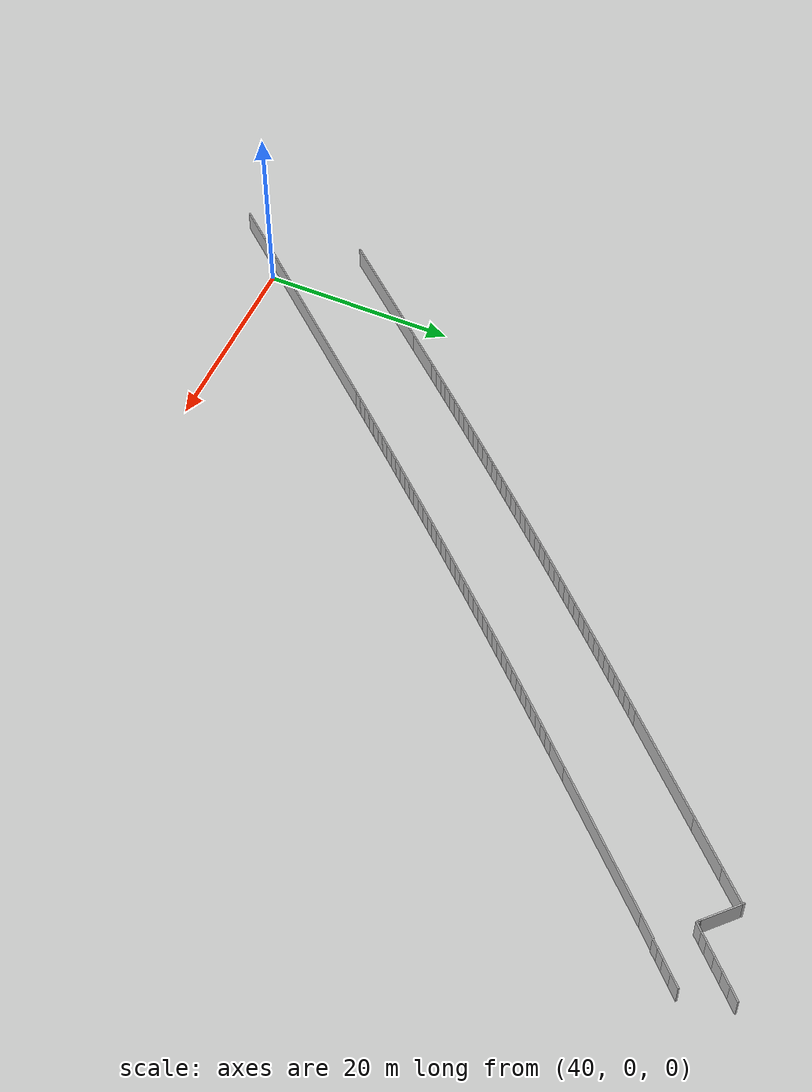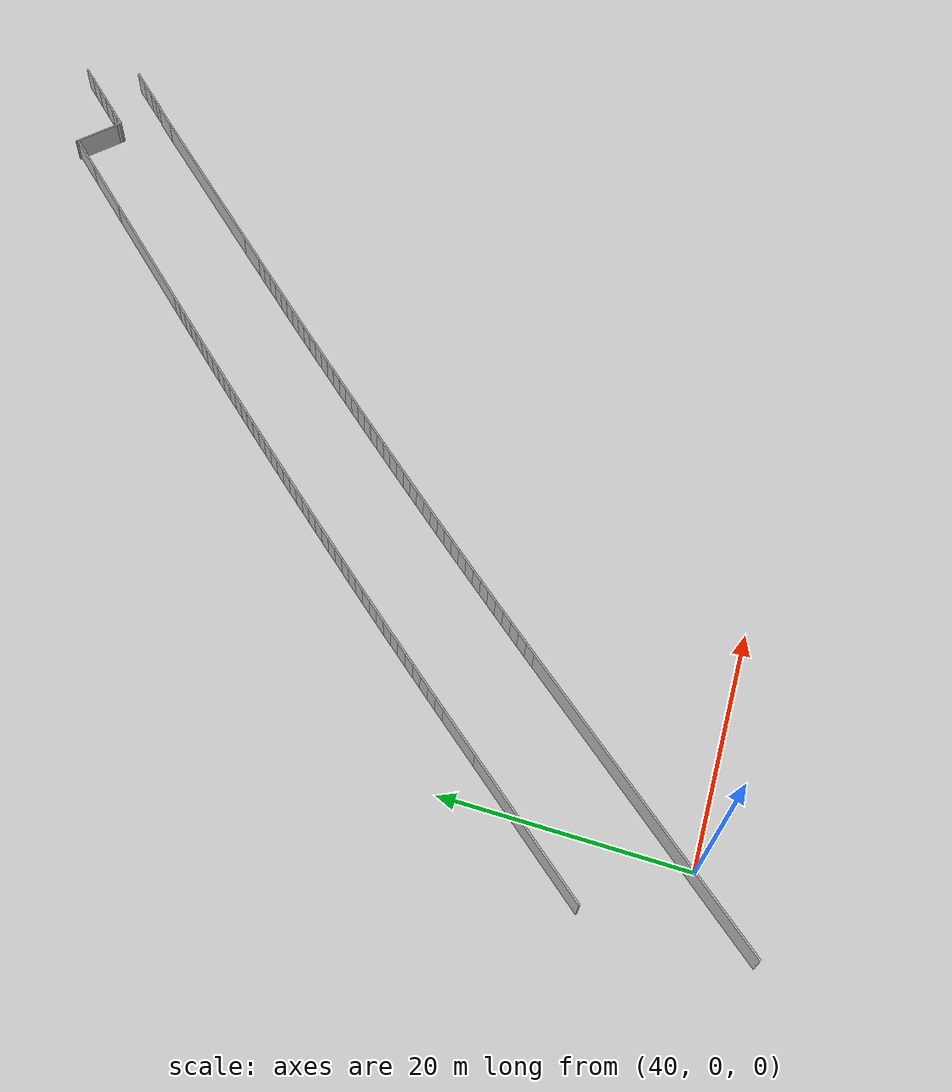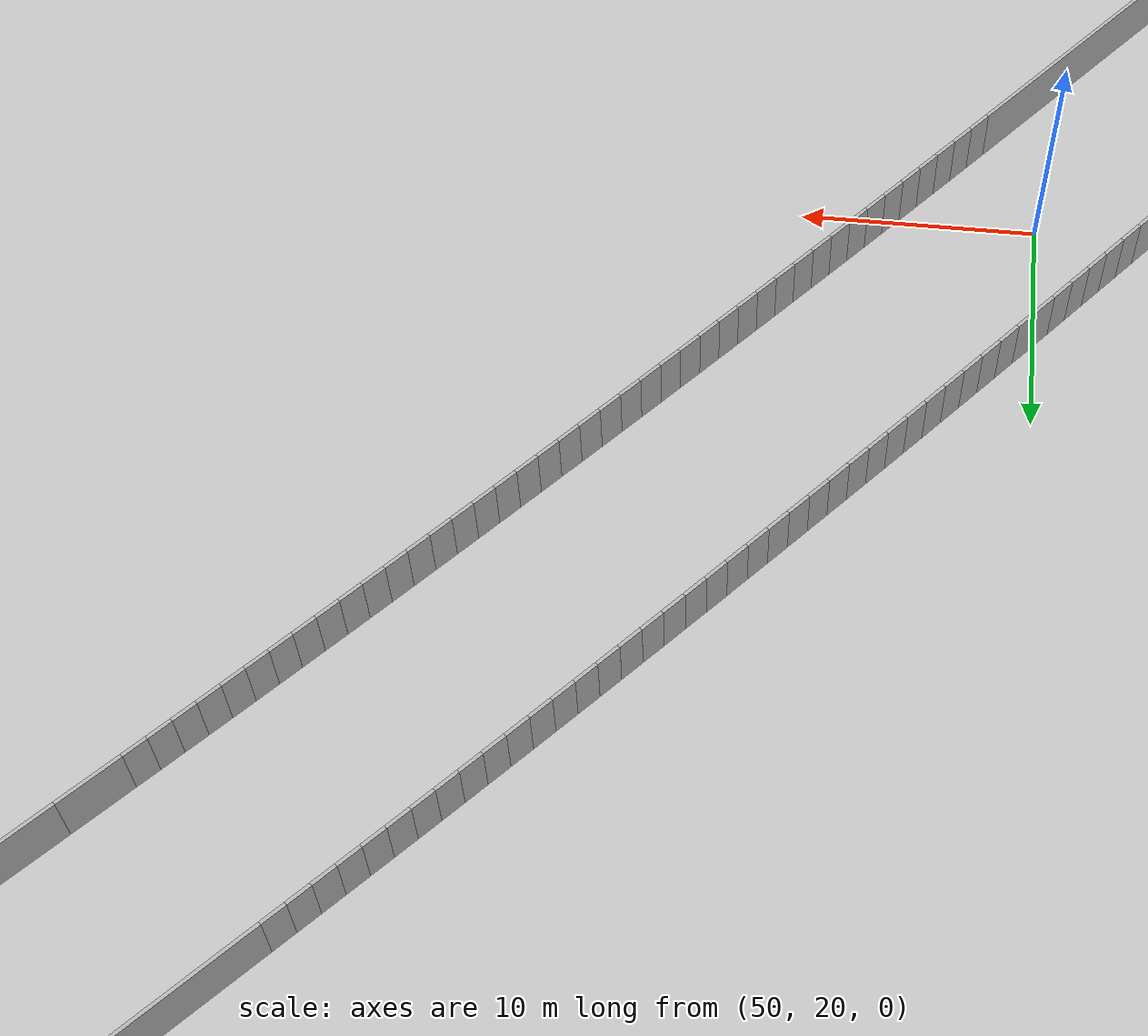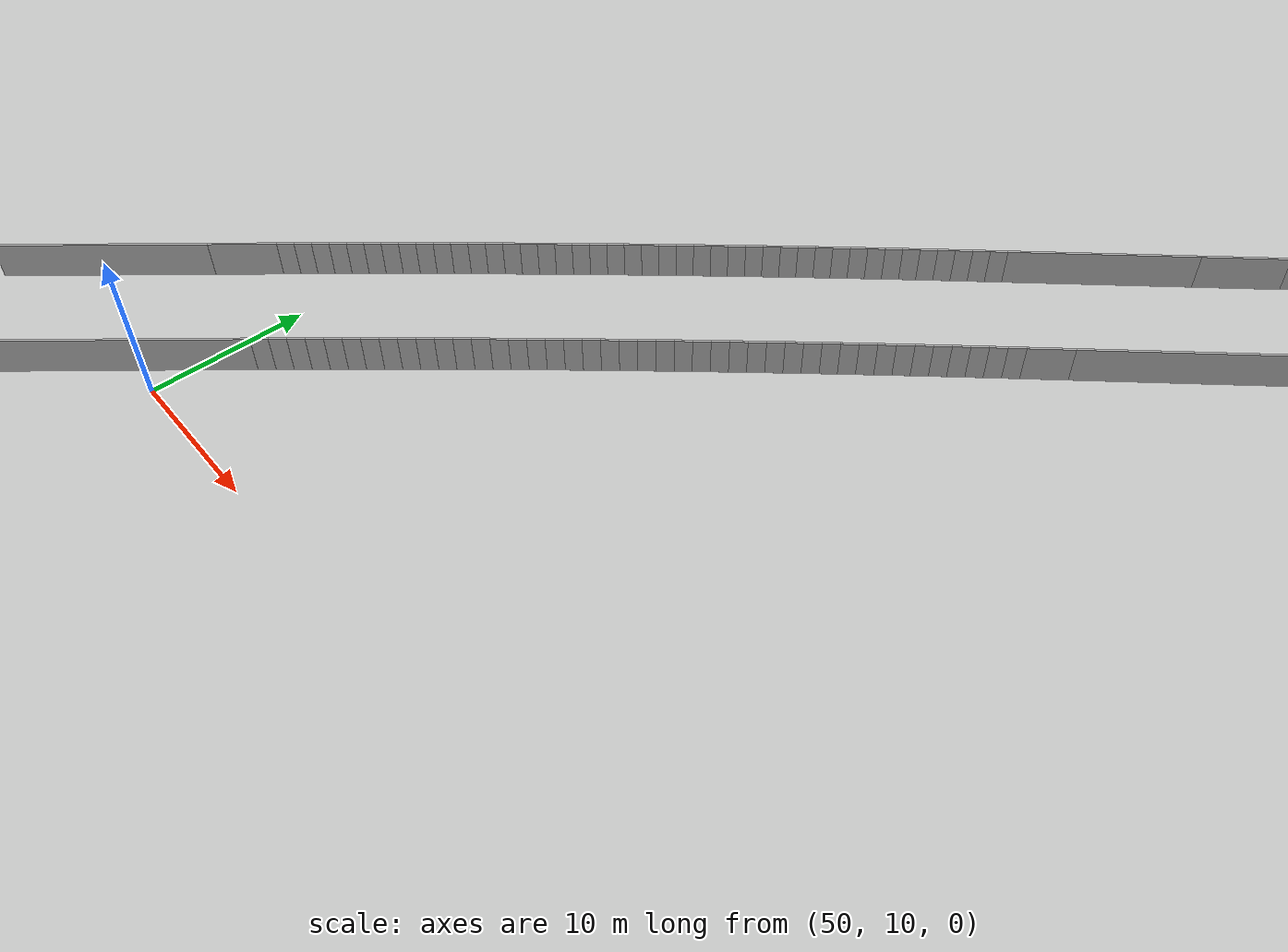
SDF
<sdf version="1.6">
 <model name="sps_0420">
  <static>1</static>
  <allow_auto_disable>0</allow_auto_disable>
  <link name="Wall45">
   <collision name="collision"><geometry><box><size>0.246635 0.15 2.5</size></box></geometry></collision>
   <visual name="visual">
    <geometry><box><size>0.246635 0.15 2.5</size></box></geometry>
    <transparency>0.0</transparency>
   </visual>
   <pose>90.7091 70.7286 1.25 0 0 -0.770349</pose>
  </link>
  <link name="Wall207">
   <collision name="collision"><geometry><box><size>11.9252 0.15 2.5</size></box></geometry></collision>
   <visual name="visual">
    <geometry><box><size>11.9252 0.15 2.5</size></box></geometry>
    <transparency>0.0</transparency>
   </visual>
   <pose>80.3936 59.5335 1.25 0 -0 0.818166</pose>
  </link>
  <link name="Wall208">
   <collision name="collision"><geometry><box><size>5.4905 0.15 2.5</size></box></geometry></collision>
   <visual name="visual">
    <geometry><box><size>5.4905 0.15 2.5</size></box></geometry>
    <transparency>0.0</transparency>
   </visual>
   <pose>86.346 65.8893 1.25 0 -0 0.818166</pose>
  </link>
  <link name="Wall209">
   <collision name="collision"><geometry><box><size>3.76717 0.15 2.5</size></box></geometry></collision>
   <visual name="visual">
    <geometry><box><size>3.76717 0.15 2.5</size></box></geometry>
    <transparency>0.0</transparency>
   </visual>
   <pose>89.5101 69.2679 1.25 0 -0 0.818166</pose>
  </link>
  <link name="Wall217">
   <collision name="collision"><geometry><box><size>0.242788 0.15 2.5</size></box></geometry></collision>
   <visual name="visual">
    <geometry><box><size>0.242788 0.15 2.5</size></box></geometry>
    <transparency>0.0</transparency>
   </visual>
   <pose>93.9666 67.7998 1.25 0 -0 0.876505</pose>
  </link>
  <link name="Wall369">
   <collision name="collision"><geometry><box><size>0.175889 0.15 2.5</size></box></geometry></collision>
   <visual name="visual">
    <geometry><box><size>0.175889 0.15 2.5</size></box></geometry>
    <transparency>0.0</transparency>
   </visual>
   <pose>93.9545 67.6479 1.25 0 0 -0.729178</pose>
  </link>
  <link name="Wall445">
   <collision name="collision"><geometry><box><size>13.3956 0.15 2.5</size></box></geometry></collision>
   <visual name="visual">
    <geometry><box><size>13.3956 0.15 2.5</size></box></geometry>
    <transparency>0.0</transparency>
   </visual>
   <pose>38.8002 12.7838 1.25 0 -0 0.867691</pose>
  </link>
  <link name="Wall446">
   <collision name="collision"><geometry><box><size>4.31681 0.15 2.5</size></box></geometry></collision>
   <visual name="visual">
    <geometry><box><size>4.31681 0.15 2.5</size></box></geometry>
    <transparency>0.0</transparency>
   </visual>
   <pose>44.5265 19.5396 1.25 0 -0 0.867691</pose>
  </link>
  <link name="Wall552">
   <collision name="collision"><geometry><box><size>0.0508075 0.15 2.5</size></box></geometry></collision>
   <visual name="visual">
    <geometry><box><size>0.0508075 0.15 2.5</size></box></geometry>
    <transparency>0.0</transparency>
   </visual>
   <pose>97.0051 64.7574 1.25 0 -0 2.25323</pose>
  </link>
  <link name="Wall620">
   <collision name="collision"><geometry><box><size>27.7321 0.15 2.5</size></box></geometry></collision>
   <visual name="visual">
    <geometry><box><size>27.7321 0.15 2.5</size></box></geometry>
    <transparency>0.0</transparency>
   </visual>
   <pose>43.4344 5.10415 1.25 0 -0 0.867753</pose>
  </link>
  <link name="Wall621">
   <collision name="collision"><geometry><box><size>2.85277 0.15 2.5</size></box></geometry></collision>
   <visual name="visual">
    <geometry><box><size>2.85277 0.15 2.5</size></box></geometry>
    <transparency>0.0</transparency>
   </visual>
   <pose>83.4944 50.4094 1.25 0 -0 0.818179</pose>
  </link>
  <link name="Wall622">
   <collision name="collision"><geometry><box><size>15.8262 0.15 2.5</size></box></geometry></collision>
   <visual name="visual">
    <geometry><box><size>15.8262 0.15 2.5</size></box></geometry>
    <transparency>0.0</transparency>
   </visual>
   <pose>89.8784 57.2263 1.25 0 -0 0.818179</pose>
  </link>
  <link name="Wall623">
   <collision name="collision"><geometry><box><size>2.45889 0.15 2.5</size></box></geometry></collision>
   <visual name="visual">
    <geometry><box><size>2.45889 0.15 2.5</size></box></geometry>
    <transparency>0.0</transparency>
   </visual>
   <pose>96.1382 63.8896 1.25 0 -0 0.806515</pose>
  </link>
  <link name="Wall671">
   <collision name="collision"><geometry><box><size>0.270926 0.15 2.5</size></box></geometry></collision>
   <visual name="visual">
    <geometry><box><size>0.270926 0.15 2.5</size></box></geometry>
    <transparency>0.0</transparency>
   </visual>
   <pose>93.7907 67.7998 1.25 0 -0 2.38191</pose>
  </link>
  <link name="Wall672">
   <collision name="collision"><geometry><box><size>3.99255 0.15 2.5</size></box></geometry></collision>
   <visual name="visual">
    <geometry><box><size>3.99255 0.15 2.5</size></box></geometry>
    <transparency>0.0</transparency>
   </visual>
   <pose>92.245 69.2679 1.25 0 -0 2.38191</pose>
  </link>
  <link name="Wall3413">
   <collision name="collision"><geometry><box><size>1.49648 0.15 2.5</size></box></geometry></collision>
   <visual name="visual">
    <geometry><box><size>1.49648 0.15 2.5</size></box></geometry>
    <transparency>0.0</transparency>
   </visual>
   <pose>99.9777 67.836 1.25 0 0 -2.33439</pose>
  </link>
  <link name="Wall3414">
   <collision name="collision"><geometry><box><size>1.49651 0.15 2.5</size></box></geometry></collision>
   <visual name="visual">
    <geometry><box><size>1.49651 0.15 2.5</size></box></geometry>
    <transparency>0.0</transparency>
   </visual>
   <pose>98.9438 66.754 1.25 0 0 -2.33246</pose>
  </link>
  <link name="Wall3415">
   <collision name="collision"><geometry><box><size>1.01888 0.15 2.5</size></box></geometry></collision>
   <visual name="visual">
    <geometry><box><size>1.01888 0.15 2.5</size></box></geometry>
    <transparency>0.0</transparency>
   </visual>
   <pose>98.0755 65.8442 1.25 0 0 -2.33357</pose>
  </link>
  <link name="Wall3416">
   <collision name="collision"><geometry><box><size>1.01898 0.15 2.5</size></box></geometry></collision>
   <visual name="visual">
    <geometry><box><size>1.01898 0.15 2.5</size></box></geometry>
    <transparency>0.0</transparency>
   </visual>
   <pose>97.3723 65.1068 1.25 0 0 -2.33133</pose>
  </link>
  <link name="Wall3577">
   <collision name="collision"><geometry><box><size>1.08497 0.15 2.5</size></box></geometry></collision>
   <visual name="visual">
    <geometry><box><size>1.08497 0.15 2.5</size></box></geometry>
    <transparency>0.0</transparency>
   </visual>
   <pose>75.947 54.7856 1.25 0 0 -2.32357</pose>
  </link>
  <link name="Wall3578">
   <collision name="collision"><geometry><box><size>1.08475 0.15 2.5</size></box></geometry></collision>
   <visual name="visual">
    <geometry><box><size>1.08475 0.15 2.5</size></box></geometry>
    <transparency>0.0</transparency>
   </visual>
   <pose>75.2056 53.9935 1.25 0 0 -2.32261</pose>
  </link>
  <link name="Wall3579">
   <collision name="collision"><geometry><box><size>1.08479 0.15 2.5</size></box></geometry></collision>
   <visual name="visual">
    <geometry><box><size>1.08479 0.15 2.5</size></box></geometry>
    <transparency>0.0</transparency>
   </visual>
   <pose>74.4652 53.2007 1.25 0 0 -2.3215</pose>
  </link>
  <link name="Wall3580">
   <collision name="collision"><geometry><box><size>1.08566 0.15 2.5</size></box></geometry></collision>
   <visual name="visual">
    <geometry><box><size>1.08566 0.15 2.5</size></box></geometry>
    <transparency>0.0</transparency>
   </visual>
   <pose>73.7255 52.4067 1.25 0 0 -2.32021</pose>
  </link>
  <link name="Wall3581">
   <collision name="collision"><geometry><box><size>1.08574 0.15 2.5</size></box></geometry></collision>
   <visual name="visual">
    <geometry><box><size>1.08574 0.15 2.5</size></box></geometry>
    <transparency>0.0</transparency>
   </visual>
   <pose>72.9863 51.6115 1.25 0 0 -2.31922</pose>
  </link>
  <link name="Wall3582">
   <collision name="collision"><geometry><box><size>1.08574 0.15 2.5</size></box></geometry></collision>
   <visual name="visual">
    <geometry><box><size>1.08574 0.15 2.5</size></box></geometry>
    <transparency>0.0</transparency>
   </visual>
   <pose>72.2479 50.8155 1.25 0 0 -2.31814</pose>
  </link>
  <link name="Wall3583">
   <collision name="collision"><geometry><box><size>1.08572 0.15 2.5</size></box></geometry></collision>
   <visual name="visual">
    <geometry><box><size>1.08572 0.15 2.5</size></box></geometry>
    <transparency>0.0</transparency>
   </visual>
   <pose>71.5105 50.0186 1.25 0 0 -2.31671</pose>
  </link>
  <link name="Wall3584">
   <collision name="collision"><geometry><box><size>1.08576 0.15 2.5</size></box></geometry></collision>
   <visual name="visual">
    <geometry><box><size>1.08576 0.15 2.5</size></box></geometry>
    <transparency>0.0</transparency>
   </visual>
   <pose>70.774 49.2208 1.25 0 0 -2.31568</pose>
  </link>
  <link name="Wall3585">
   <collision name="collision"><geometry><box><size>1.08559 0.15 2.5</size></box></geometry></collision>
   <visual name="visual">
    <geometry><box><size>1.08559 0.15 2.5</size></box></geometry>
    <transparency>0.0</transparency>
   </visual>
   <pose>70.0384 48.4223 1.25 0 0 -2.31476</pose>
  </link>
  <link name="Wall3586">
   <collision name="collision"><geometry><box><size>1.08569 0.15 2.5</size></box></geometry></collision>
   <visual name="visual">
    <geometry><box><size>1.08569 0.15 2.5</size></box></geometry>
    <transparency>0.0</transparency>
   </visual>
   <pose>69.3038 47.623 1.25 0 0 -2.31345</pose>
  </link>
  <link name="Wall3587">
   <collision name="collision"><geometry><box><size>1.08587 0.15 2.5</size></box></geometry></collision>
   <visual name="visual">
    <geometry><box><size>1.08587 0.15 2.5</size></box></geometry>
    <transparency>0.0</transparency>
   </visual>
   <pose>68.57 46.8227 1.25 0 0 -2.3123</pose>
  </link>
  <link name="Wall3588">
   <collision name="collision"><geometry><box><size>1.08571 0.15 2.5</size></box></geometry></collision>
   <visual name="visual">
    <geometry><box><size>1.08571 0.15 2.5</size></box></geometry>
    <transparency>0.0</transparency>
   </visual>
   <pose>67.8371 46.0216 1.25 0 0 -2.31122</pose>
  </link>
  <link name="Wall3589">
   <collision name="collision"><geometry><box><size>1.08581 0.15 2.5</size></box></geometry></collision>
   <visual name="visual">
    <geometry><box><size>1.08581 0.15 2.5</size></box></geometry>
    <transparency>0.0</transparency>
   </visual>
   <pose>67.1051 45.2197 1.25 0 0 -2.31007</pose>
  </link>
  <link name="Wall3590">
   <collision name="collision"><geometry><box><size>1.08583 0.15 2.5</size></box></geometry></collision>
   <visual name="visual">
    <geometry><box><size>1.08583 0.15 2.5</size></box></geometry>
    <transparency>0.0</transparency>
   </visual>
   <pose>66.374 44.4169 1.25 0 0 -2.30892</pose>
  </link>
  <link name="Wall3591">
   <collision name="collision"><geometry><box><size>1.08563 0.15 2.5</size></box></geometry></collision>
   <visual name="visual">
    <geometry><box><size>1.08563 0.15 2.5</size></box></geometry>
    <transparency>0.0</transparency>
   </visual>
   <pose>65.6439 43.6133 1.25 0 0 -2.30772</pose>
  </link>
  <link name="Wall3592">
   <collision name="collision"><geometry><box><size>1.08565 0.15 2.5</size></box></geometry></collision>
   <visual name="visual">
    <geometry><box><size>1.08565 0.15 2.5</size></box></geometry>
    <transparency>0.0</transparency>
   </visual>
   <pose>64.9148 42.8089 1.25 0 0 -2.30656</pose>
  </link>
  <link name="Wall3593">
   <collision name="collision"><geometry><box><size>1.08566 0.15 2.5</size></box></geometry></collision>
   <visual name="visual">
    <geometry><box><size>1.08566 0.15 2.5</size></box></geometry>
    <transparency>0.0</transparency>
   </visual>
   <pose>64.1865 42.0037 1.25 0 0 -2.30549</pose>
  </link>
  <link name="Wall3594">
   <collision name="collision"><geometry><box><size>1.08604 0.15 2.5</size></box></geometry></collision>
   <visual name="visual">
    <geometry><box><size>1.08604 0.15 2.5</size></box></geometry>
    <transparency>0.0</transparency>
   </visual>
   <pose>63.4592 41.1975 1.25 0 0 -2.30419</pose>
  </link>
  <link name="Wall3595">
   <collision name="collision"><geometry><box><size>1.08579 0.15 2.5</size></box></geometry></collision>
   <visual name="visual">
    <geometry><box><size>1.08579 0.15 2.5</size></box></geometry>
    <transparency>0.0</transparency>
   </visual>
   <pose>62.7327 40.3904 1.25 0 0 -2.30319</pose>
  </link>
  <link name="Wall3596">
   <collision name="collision"><geometry><box><size>1.08574 0.15 2.5</size></box></geometry></collision>
   <visual name="visual">
    <geometry><box><size>1.08574 0.15 2.5</size></box></geometry>
    <transparency>0.0</transparency>
   </visual>
   <pose>62.0072 39.5826 1.25 0 0 -2.30195</pose>
  </link>
  <link name="Wall3597">
   <collision name="collision"><geometry><box><size>1.08579 0.15 2.5</size></box></geometry></collision>
   <visual name="visual">
    <geometry><box><size>1.08579 0.15 2.5</size></box></geometry>
    <transparency>0.0</transparency>
   </visual>
   <pose>61.2826 38.774 1.25 0 0 -2.301</pose>
  </link>
  <link name="Wall3598">
   <collision name="collision"><geometry><box><size>1.0856 0.15 2.5</size></box></geometry></collision>
   <visual name="visual">
    <geometry><box><size>1.0856 0.15 2.5</size></box></geometry>
    <transparency>0.0</transparency>
   </visual>
   <pose>60.5588 37.9647 1.25 0 0 -2.29987</pose>
  </link>
  <link name="Wall3599">
   <collision name="collision"><geometry><box><size>1.08576 0.15 2.5</size></box></geometry></collision>
   <visual name="visual">
    <geometry><box><size>1.08576 0.15 2.5</size></box></geometry>
    <transparency>0.0</transparency>
   </visual>
   <pose>59.8361 37.1546 1.25 0 0 -2.29869</pose>
  </link>
  <link name="Wall3600">
   <collision name="collision"><geometry><box><size>1.08574 0.15 2.5</size></box></geometry></collision>
   <visual name="visual">
    <geometry><box><size>1.08574 0.15 2.5</size></box></geometry>
    <transparency>0.0</transparency>
   </visual>
   <pose>59.1142 36.3436 1.25 0 0 -2.29757</pose>
  </link>
  <link name="Wall3601">
   <collision name="collision"><geometry><box><size>1.08565 0.15 2.5</size></box></geometry></collision>
   <visual name="visual">
    <geometry><box><size>1.08565 0.15 2.5</size></box></geometry>
    <transparency>0.0</transparency>
   </visual>
   <pose>58.3932 35.5318 1.25 0 0 -2.29637</pose>
  </link>
  <link name="Wall3602">
   <collision name="collision"><geometry><box><size>1.08572 0.15 2.5</size></box></geometry></collision>
   <visual name="visual">
    <geometry><box><size>1.08572 0.15 2.5</size></box></geometry>
    <transparency>0.0</transparency>
   </visual>
   <pose>57.6732 34.7192 1.25 0 0 -2.29534</pose>
  </link>
  <link name="Wall3603">
   <collision name="collision"><geometry><box><size>1.08569 0.15 2.5</size></box></geometry></collision>
   <visual name="visual">
    <geometry><box><size>1.08569 0.15 2.5</size></box></geometry>
    <transparency>0.0</transparency>
   </visual>
   <pose>56.9542 33.9057 1.25 0 0 -2.29386</pose>
  </link>
  <link name="Wall3604">
   <collision name="collision"><geometry><box><size>1.08569 0.15 2.5</size></box></geometry></collision>
   <visual name="visual">
    <geometry><box><size>1.08569 0.15 2.5</size></box></geometry>
    <transparency>0.0</transparency>
   </visual>
   <pose>56.2362 33.0914 1.25 0 0 -2.29311</pose>
  </link>
  <link name="Wall3605">
   <collision name="collision"><geometry><box><size>1.08583 0.15 2.5</size></box></geometry></collision>
   <visual name="visual">
    <geometry><box><size>1.08583 0.15 2.5</size></box></geometry>
    <transparency>0.0</transparency>
   </visual>
   <pose>55.5189 32.2763 1.25 0 0 -2.2918</pose>
  </link>
  <link name="Wall3606">
   <collision name="collision"><geometry><box><size>1.08578 0.15 2.5</size></box></geometry></collision>
   <visual name="visual">
    <geometry><box><size>1.08578 0.15 2.5</size></box></geometry>
    <transparency>0.0</transparency>
   </visual>
   <pose>54.8026 31.4603 1.25 0 0 -2.29064</pose>
  </link>
  <link name="Wall3607">
   <collision name="collision"><geometry><box><size>1.08569 0.15 2.5</size></box></geometry></collision>
   <visual name="visual">
    <geometry><box><size>1.08569 0.15 2.5</size></box></geometry>
    <transparency>0.0</transparency>
   </visual>
   <pose>54.0873 30.6435 1.25 0 0 -2.28944</pose>
  </link>
  <link name="Wall3608">
   <collision name="collision"><geometry><box><size>1.08581 0.15 2.5</size></box></geometry></collision>
   <visual name="visual">
    <geometry><box><size>1.08581 0.15 2.5</size></box></geometry>
    <transparency>0.0</transparency>
   </visual>
   <pose>53.3729 29.8259 1.25 0 0 -2.28845</pose>
  </link>
  <link name="Wall3609">
   <collision name="collision"><geometry><box><size>1.08568 0.15 2.5</size></box></geometry></collision>
   <visual name="visual">
    <geometry><box><size>1.08568 0.15 2.5</size></box></geometry>
    <transparency>0.0</transparency>
   </visual>
   <pose>52.6594 29.0075 1.25 0 0 -2.28721</pose>
  </link>
  <link name="Wall3610">
   <collision name="collision"><geometry><box><size>1.08568 0.15 2.5</size></box></geometry></collision>
   <visual name="visual">
    <geometry><box><size>1.08568 0.15 2.5</size></box></geometry>
    <transparency>0.0</transparency>
   </visual>
   <pose>51.9469 28.1883 1.25 0 0 -2.28609</pose>
  </link>
  <link name="Wall3611">
   <collision name="collision"><geometry><box><size>1.08563 0.15 2.5</size></box></geometry></collision>
   <visual name="visual">
    <geometry><box><size>1.08563 0.15 2.5</size></box></geometry>
    <transparency>0.0</transparency>
   </visual>
   <pose>51.2353 27.3684 1.25 0 0 -2.28509</pose>
  </link>
  <link name="Wall3612">
   <collision name="collision"><geometry><box><size>1.08568 0.15 2.5</size></box></geometry></collision>
   <visual name="visual">
    <geometry><box><size>1.08568 0.15 2.5</size></box></geometry>
    <transparency>0.0</transparency>
   </visual>
   <pose>50.5246 26.5477 1.25 0 0 -2.28386</pose>
  </link>
  <link name="Wall3613">
   <collision name="collision"><geometry><box><size>1.08581 0.15 2.5</size></box></geometry></collision>
   <visual name="visual">
    <geometry><box><size>1.08581 0.15 2.5</size></box></geometry>
    <transparency>0.0</transparency>
   </visual>
   <pose>49.8148 25.7261 1.25 0 0 -2.28279</pose>
  </link>
  <link name="Wall3614">
   <collision name="collision"><geometry><box><size>1.08575 0.15 2.5</size></box></geometry></collision>
   <visual name="visual">
    <geometry><box><size>1.08575 0.15 2.5</size></box></geometry>
    <transparency>0.0</transparency>
   </visual>
   <pose>49.1059 24.9036 1.25 0 0 -2.28136</pose>
  </link>
  <link name="Wall3615">
   <collision name="collision"><geometry><box><size>1.08582 0.15 2.5</size></box></geometry></collision>
   <visual name="visual">
    <geometry><box><size>1.08582 0.15 2.5</size></box></geometry>
    <transparency>0.0</transparency>
   </visual>
   <pose>48.3981 24.0803 1.25 0 0 -2.28056</pose>
  </link>
  <link name="Wall3616">
   <collision name="collision"><geometry><box><size>1.08849 0.15 2.5</size></box></geometry></collision>
   <visual name="visual">
    <geometry><box><size>1.08849 0.15 2.5</size></box></geometry>
    <transparency>0.0</transparency>
   </visual>
   <pose>47.6902 23.2552 1.25 0 0 -2.2792</pose>
  </link>
  <link name="Wall3617">
   <collision name="collision"><geometry><box><size>1.08857 0.15 2.5</size></box></geometry></collision>
   <visual name="visual">
    <geometry><box><size>1.08857 0.15 2.5</size></box></geometry>
    <transparency>0.0</transparency>
   </visual>
   <pose>46.9824 22.4282 1.25 0 0 -2.27817</pose>
  </link>
  <link name="Wall3618">
   <collision name="collision"><geometry><box><size>1.0888 0.15 2.5</size></box></geometry></collision>
   <visual name="visual">
    <geometry><box><size>1.0888 0.15 2.5</size></box></geometry>
    <transparency>0.0</transparency>
   </visual>
   <pose>46.2754 21.6003 1.25 0 0 -2.27703</pose>
  </link>
  <link name="Wall6022">
   <collision name="collision"><geometry><box><size>1.503 0.15 2.5</size></box></geometry></collision>
   <visual name="visual">
    <geometry><box><size>1.503 0.15 2.5</size></box></geometry>
    <transparency>0.0</transparency>
   </visual>
   <pose>99.0581 72.856 1.25 0 0 -2.33739</pose>
  </link>
  <link name="Wall6023">
   <collision name="collision"><geometry><box><size>1.50304 0.15 2.5</size></box></geometry></collision>
   <visual name="visual">
    <geometry><box><size>1.50304 0.15 2.5</size></box></geometry>
    <transparency>0.0</transparency>
   </visual>
   <pose>98.0163 71.7726 1.25 0 0 -2.33583</pose>
  </link>
  <link name="Wall6024">
   <collision name="collision"><geometry><box><size>1.50314 0.15 2.5</size></box></geometry></collision>
   <visual name="visual">
    <geometry><box><size>1.50314 0.15 2.5</size></box></geometry>
    <transparency>0.0</transparency>
   </visual>
   <pose>96.9762 70.6875 1.25 0 0 -2.3342</pose>
  </link>
  <link name="Wall6025">
   <collision name="collision"><geometry><box><size>1.50301 0.15 2.5</size></box></geometry></collision>
   <visual name="visual">
    <geometry><box><size>1.50301 0.15 2.5</size></box></geometry>
    <transparency>0.0</transparency>
   </visual>
   <pose>95.9378 69.6008 1.25 0 0 -2.33276</pose>
  </link>
  <link name="Wall6026">
   <collision name="collision"><geometry><box><size>1.01384 0.15 2.5</size></box></geometry></collision>
   <visual name="visual">
    <geometry><box><size>1.01384 0.15 2.5</size></box></geometry>
    <transparency>0.0</transparency>
   </visual>
   <pose>95.0689 68.6905 1.25 0 0 -2.33316</pose>
  </link>
  <link name="Wall6027">
   <collision name="collision"><geometry><box><size>1.01385 0.15 2.5</size></box></geometry></collision>
   <visual name="visual">
    <geometry><box><size>1.01385 0.15 2.5</size></box></geometry>
    <transparency>0.0</transparency>
   </visual>
   <pose>94.3694 67.9566 1.25 0 0 -2.33125</pose>
  </link>
  <link name="Wall10099">
   <collision name="collision"><geometry><box><size>1.0762 0.15 2.5</size></box></geometry></collision>
   <visual name="visual">
    <geometry><box><size>1.0762 0.15 2.5</size></box></geometry>
    <transparency>0.0</transparency>
   </visual>
   <pose>82.1515 48.9757 1.25 0 0 -2.32383</pose>
  </link>
  <link name="Wall10100">
   <collision name="collision"><geometry><box><size>1.07625 0.15 2.5</size></box></geometry></collision>
   <visual name="visual">
    <geometry><box><size>1.07625 0.15 2.5</size></box></geometry>
    <transparency>0.0</transparency>
   </visual>
   <pose>81.416 48.19 1.25 0 0 -2.32254</pose>
  </link>
  <link name="Wall10101">
   <collision name="collision"><geometry><box><size>1.07646 0.15 2.5</size></box></geometry></collision>
   <visual name="visual">
    <geometry><box><size>1.07646 0.15 2.5</size></box></geometry>
    <transparency>0.0</transparency>
   </visual>
   <pose>80.6814 47.4033 1.25 0 0 -2.32143</pose>
  </link>
  <link name="Wall10102">
   <collision name="collision"><geometry><box><size>1.07602 0.15 2.5</size></box></geometry></collision>
   <visual name="visual">
    <geometry><box><size>1.07602 0.15 2.5</size></box></geometry>
    <transparency>0.0</transparency>
   </visual>
   <pose>79.9477 46.6159 1.25 0 0 -2.32041</pose>
  </link>
  <link name="Wall10103">
   <collision name="collision"><geometry><box><size>1.07603 0.15 2.5</size></box></geometry></collision>
   <visual name="visual">
    <geometry><box><size>1.07603 0.15 2.5</size></box></geometry>
    <transparency>0.0</transparency>
   </visual>
   <pose>79.215 45.8279 1.25 0 0 -2.31925</pose>
  </link>
  <link name="Wall10104">
   <collision name="collision"><geometry><box><size>1.07599 0.15 2.5</size></box></geometry></collision>
   <visual name="visual">
    <geometry><box><size>1.07599 0.15 2.5</size></box></geometry>
    <transparency>0.0</transparency>
   </visual>
   <pose>78.4832 45.039 1.25 0 0 -2.31796</pose>
  </link>
  <link name="Wall10105">
   <collision name="collision"><geometry><box><size>1.07608 0.15 2.5</size></box></geometry></collision>
   <visual name="visual">
    <geometry><box><size>1.07608 0.15 2.5</size></box></geometry>
    <transparency>0.0</transparency>
   </visual>
   <pose>77.7524 44.2492 1.25 0 0 -2.31688</pose>
  </link>
  <link name="Wall10106">
   <collision name="collision"><geometry><box><size>1.07622 0.15 2.5</size></box></geometry></collision>
   <visual name="visual">
    <geometry><box><size>1.07622 0.15 2.5</size></box></geometry>
    <transparency>0.0</transparency>
   </visual>
   <pose>77.0225 43.4585 1.25 0 0 -2.31568</pose>
  </link>
  <link name="Wall10107">
   <collision name="collision"><geometry><box><size>1.07618 0.15 2.5</size></box></geometry></collision>
   <visual name="visual">
    <geometry><box><size>1.07618 0.15 2.5</size></box></geometry>
    <transparency>0.0</transparency>
   </visual>
   <pose>76.2934 42.6669 1.25 0 0 -2.31456</pose>
  </link>
  <link name="Wall10108">
   <collision name="collision"><geometry><box><size>1.07593 0.15 2.5</size></box></geometry></collision>
   <visual name="visual">
    <geometry><box><size>1.07593 0.15 2.5</size></box></geometry>
    <transparency>0.0</transparency>
   </visual>
   <pose>75.5652 41.8746 1.25 0 0 -2.31346</pose>
  </link>
  <link name="Wall10109">
   <collision name="collision"><geometry><box><size>1.07611 0.15 2.5</size></box></geometry></collision>
   <visual name="visual">
    <geometry><box><size>1.07611 0.15 2.5</size></box></geometry>
    <transparency>0.0</transparency>
   </visual>
   <pose>74.838 41.0815 1.25 0 0 -2.3123</pose>
  </link>
  <link name="Wall10110">
   <collision name="collision"><geometry><box><size>1.07604 0.15 2.5</size></box></geometry></collision>
   <visual name="visual">
    <geometry><box><size>1.07604 0.15 2.5</size></box></geometry>
    <transparency>0.0</transparency>
   </visual>
   <pose>74.1117 40.2875 1.25 0 0 -2.31106</pose>
  </link>
  <link name="Wall10111">
   <collision name="collision"><geometry><box><size>1.07595 0.15 2.5</size></box></geometry></collision>
   <visual name="visual">
    <geometry><box><size>1.07595 0.15 2.5</size></box></geometry>
    <transparency>0.0</transparency>
   </visual>
   <pose>73.3863 39.4928 1.25 0 0 -2.31021</pose>
  </link>
  <link name="Wall10112">
   <collision name="collision"><geometry><box><size>1.07602 0.15 2.5</size></box></geometry></collision>
   <visual name="visual">
    <geometry><box><size>1.07602 0.15 2.5</size></box></geometry>
    <transparency>0.0</transparency>
   </visual>
   <pose>72.6618 38.6973 1.25 0 0 -2.30885</pose>
  </link>
  <link name="Wall10113">
   <collision name="collision"><geometry><box><size>1.07599 0.15 2.5</size></box></geometry></collision>
   <visual name="visual">
    <geometry><box><size>1.07599 0.15 2.5</size></box></geometry>
    <transparency>0.0</transparency>
   </visual>
   <pose>71.9383 37.9009 1.25 0 0 -2.3078</pose>
  </link>
  <link name="Wall10114">
   <collision name="collision"><geometry><box><size>1.07601 0.15 2.5</size></box></geometry></collision>
   <visual name="visual">
    <geometry><box><size>1.07601 0.15 2.5</size></box></geometry>
    <transparency>0.0</transparency>
   </visual>
   <pose>71.2156 37.1037 1.25 0 0 -2.30664</pose>
  </link>
  <link name="Wall10115">
   <collision name="collision"><geometry><box><size>1.07602 0.15 2.5</size></box></geometry></collision>
   <visual name="visual">
    <geometry><box><size>1.07602 0.15 2.5</size></box></geometry>
    <transparency>0.0</transparency>
   </visual>
   <pose>70.4938 36.3057 1.25 0 0 -2.30556</pose>
  </link>
  <link name="Wall10116">
   <collision name="collision"><geometry><box><size>1.07614 0.15 2.5</size></box></geometry></collision>
   <visual name="visual">
    <geometry><box><size>1.07614 0.15 2.5</size></box></geometry>
    <transparency>0.0</transparency>
   </visual>
   <pose>69.7729 35.5068 1.25 0 0 -2.30424</pose>
  </link>
  <link name="Wall10117">
   <collision name="collision"><geometry><box><size>1.07589 0.15 2.5</size></box></geometry></collision>
   <visual name="visual">
    <geometry><box><size>1.07589 0.15 2.5</size></box></geometry>
    <transparency>0.0</transparency>
   </visual>
   <pose>69.053 34.7071 1.25 0 0 -2.30322</pose>
  </link>
  <link name="Wall10118">
   <collision name="collision"><geometry><box><size>1.07609 0.15 2.5</size></box></geometry></collision>
   <visual name="visual">
    <geometry><box><size>1.07609 0.15 2.5</size></box></geometry>
    <transparency>0.0</transparency>
   </visual>
   <pose>68.3339 33.9066 1.25 0 0 -2.30206</pose>
  </link>
  <link name="Wall10119">
   <collision name="collision"><geometry><box><size>1.07616 0.15 2.5</size></box></geometry></collision>
   <visual name="visual">
    <geometry><box><size>1.07616 0.15 2.5</size></box></geometry>
    <transparency>0.0</transparency>
   </visual>
   <pose>67.6157 33.1052 1.25 0 0 -2.30094</pose>
  </link>
  <link name="Wall10120">
   <collision name="collision"><geometry><box><size>1.0761 0.15 2.5</size></box></geometry></collision>
   <visual name="visual">
    <geometry><box><size>1.0761 0.15 2.5</size></box></geometry>
    <transparency>0.0</transparency>
   </visual>
   <pose>66.8985 32.303 1.25 0 0 -2.29977</pose>
  </link>
  <link name="Wall10121">
   <collision name="collision"><geometry><box><size>1.07604 0.15 2.5</size></box></geometry></collision>
   <visual name="visual">
    <geometry><box><size>1.07604 0.15 2.5</size></box></geometry>
    <transparency>0.0</transparency>
   </visual>
   <pose>66.1822 31.5 1.25 0 0 -2.29861</pose>
  </link>
  <link name="Wall10122">
   <collision name="collision"><geometry><box><size>1.07594 0.15 2.5</size></box></geometry></collision>
   <visual name="visual">
    <geometry><box><size>1.07594 0.15 2.5</size></box></geometry>
    <transparency>0.0</transparency>
   </visual>
   <pose>65.4668 30.6962 1.25 0 0 -2.2974</pose>
  </link>
  <link name="Wall10123">
   <collision name="collision"><geometry><box><size>1.07613 0.15 2.5</size></box></geometry></collision>
   <visual name="visual">
    <geometry><box><size>1.07613 0.15 2.5</size></box></geometry>
    <transparency>0.0</transparency>
   </visual>
   <pose>64.7524 29.8916 1.25 0 0 -2.29648</pose>
  </link>
  <link name="Wall10124">
   <collision name="collision"><geometry><box><size>1.07595 0.15 2.5</size></box></geometry></collision>
   <visual name="visual">
    <geometry><box><size>1.07595 0.15 2.5</size></box></geometry>
    <transparency>0.0</transparency>
   </visual>
   <pose>64.0388 29.0862 1.25 0 0 -2.29519</pose>
  </link>
  <link name="Wall10125">
   <collision name="collision"><geometry><box><size>1.07634 0.15 2.5</size></box></geometry></collision>
   <visual name="visual">
    <geometry><box><size>1.07634 0.15 2.5</size></box></geometry>
    <transparency>0.0</transparency>
   </visual>
   <pose>63.3262 28.2798 1.25 0 0 -2.29388</pose>
  </link>
  <link name="Wall10126">
   <collision name="collision"><geometry><box><size>1.07609 0.15 2.5</size></box></geometry></collision>
   <visual name="visual">
    <geometry><box><size>1.07609 0.15 2.5</size></box></geometry>
    <transparency>0.0</transparency>
   </visual>
   <pose>62.6143 27.4726 1.25 0 0 -2.29311</pose>
  </link>
  <link name="Wall10127">
   <collision name="collision"><geometry><box><size>1.07605 0.15 2.5</size></box></geometry></collision>
   <visual name="visual">
    <geometry><box><size>1.07605 0.15 2.5</size></box></geometry>
    <transparency>0.0</transparency>
   </visual>
   <pose>61.9034 26.6648 1.25 0 0 -2.29186</pose>
  </link>
  <link name="Wall10128">
   <collision name="collision"><geometry><box><size>1.076 0.15 2.5</size></box></geometry></collision>
   <visual name="visual">
    <geometry><box><size>1.076 0.15 2.5</size></box></geometry>
    <transparency>0.0</transparency>
   </visual>
   <pose>61.1935 25.8562 1.25 0 0 -2.29069</pose>
  </link>
  <link name="Wall10129">
   <collision name="collision"><geometry><box><size>1.07587 0.15 2.5</size></box></geometry></collision>
   <visual name="visual">
    <geometry><box><size>1.07587 0.15 2.5</size></box></geometry>
    <transparency>0.0</transparency>
   </visual>
   <pose>60.4846 25.0468 1.25 0 0 -2.28951</pose>
  </link>
  <link name="Wall10130">
   <collision name="collision"><geometry><box><size>1.07617 0.15 2.5</size></box></geometry></collision>
   <visual name="visual">
    <geometry><box><size>1.07617 0.15 2.5</size></box></geometry>
    <transparency>0.0</transparency>
   </visual>
   <pose>59.7767 24.2365 1.25 0 0 -2.28829</pose>
  </link>
  <link name="Wall10131">
   <collision name="collision"><geometry><box><size>1.07611 0.15 2.5</size></box></geometry></collision>
   <visual name="visual">
    <geometry><box><size>1.07611 0.15 2.5</size></box></geometry>
    <transparency>0.0</transparency>
   </visual>
   <pose>59.0694 23.4254 1.25 0 0 -2.28744</pose>
  </link>
  <link name="Wall10132">
   <collision name="collision"><geometry><box><size>1.07586 0.15 2.5</size></box></geometry></collision>
   <visual name="visual">
    <geometry><box><size>1.07586 0.15 2.5</size></box></geometry>
    <transparency>0.0</transparency>
   </visual>
   <pose>58.3632 22.6136 1.25 0 0 -2.28606</pose>
  </link>
  <link name="Wall10133">
   <collision name="collision"><geometry><box><size>1.07608 0.15 2.5</size></box></geometry></collision>
   <visual name="visual">
    <geometry><box><size>1.07608 0.15 2.5</size></box></geometry>
    <transparency>0.0</transparency>
   </visual>
   <pose>57.6581 21.8009 1.25 0 0 -2.2849</pose>
  </link>
  <link name="Wall10134">
   <collision name="collision"><geometry><box><size>1.07594 0.15 2.5</size></box></geometry></collision>
   <visual name="visual">
    <geometry><box><size>1.07594 0.15 2.5</size></box></geometry>
    <transparency>0.0</transparency>
   </visual>
   <pose>56.9538 20.9874 1.25 0 0 -2.28389</pose>
  </link>
  <link name="Wall10135">
   <collision name="collision"><geometry><box><size>1.07629 0.15 2.5</size></box></geometry></collision>
   <visual name="visual">
    <geometry><box><size>1.07629 0.15 2.5</size></box></geometry>
    <transparency>0.0</transparency>
   </visual>
   <pose>56.2502 20.1731 1.25 0 0 -2.28279</pose>
  </link>
  <link name="Wall10136">
   <collision name="collision"><geometry><box><size>1.07596 0.15 2.5</size></box></geometry></collision>
   <visual name="visual">
    <geometry><box><size>1.07596 0.15 2.5</size></box></geometry>
    <transparency>0.0</transparency>
   </visual>
   <pose>55.5477 19.358 1.25 0 0 -2.28156</pose>
  </link>
  <link name="Wall10137">
   <collision name="collision"><geometry><box><size>1.07603 0.15 2.5</size></box></geometry></collision>
   <visual name="visual">
    <geometry><box><size>1.07603 0.15 2.5</size></box></geometry>
    <transparency>0.0</transparency>
   </visual>
   <pose>54.8461 18.5422 1.25 0 0 -2.2806</pose>
  </link>
  <link name="Wall10138">
   <collision name="collision"><geometry><box><size>1.07528 0.15 2.5</size></box></geometry></collision>
   <visual name="visual">
    <geometry><box><size>1.07528 0.15 2.5</size></box></geometry>
    <transparency>0.0</transparency>
   </visual>
   <pose>54.1457 17.7258 1.25 0 0 -2.27918</pose>
  </link>
  <link name="Wall10139">
   <collision name="collision"><geometry><box><size>1.07511 0.15 2.5</size></box></geometry></collision>
   <visual name="visual">
    <geometry><box><size>1.07511 0.15 2.5</size></box></geometry>
    <transparency>0.0</transparency>
   </visual>
   <pose>53.4466 16.9089 1.25 0 0 -2.27812</pose>
  </link>
  <link name="Wall10140">
   <collision name="collision"><geometry><box><size>1.07525 0.15 2.5</size></box></geometry></collision>
   <visual name="visual">
    <geometry><box><size>1.07525 0.15 2.5</size></box></geometry>
    <transparency>0.0</transparency>
   </visual>
   <pose>52.7483 16.0913 1.25 0 0 -2.27704</pose>
  </link>
 </model>
</sdf>
